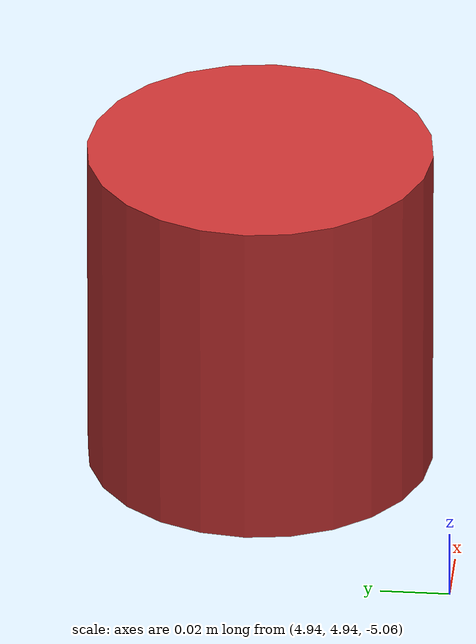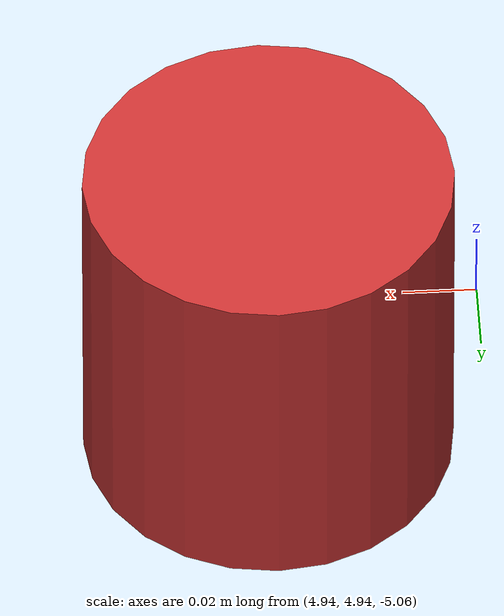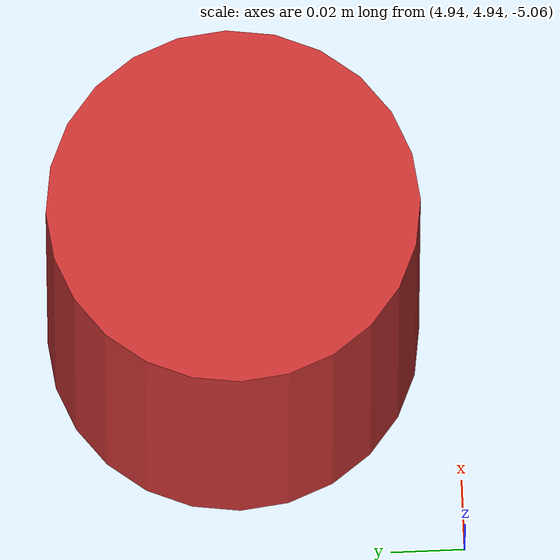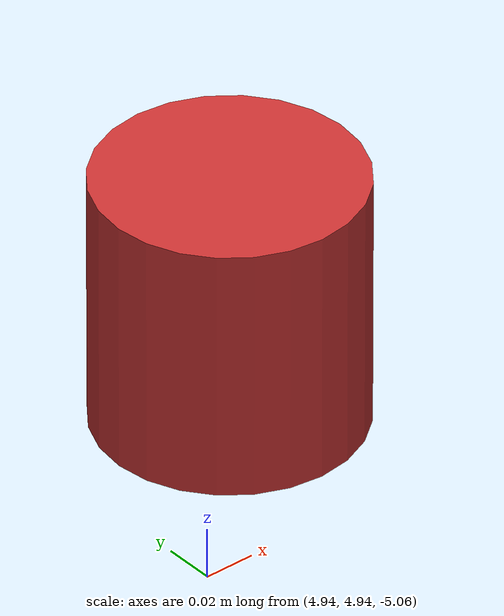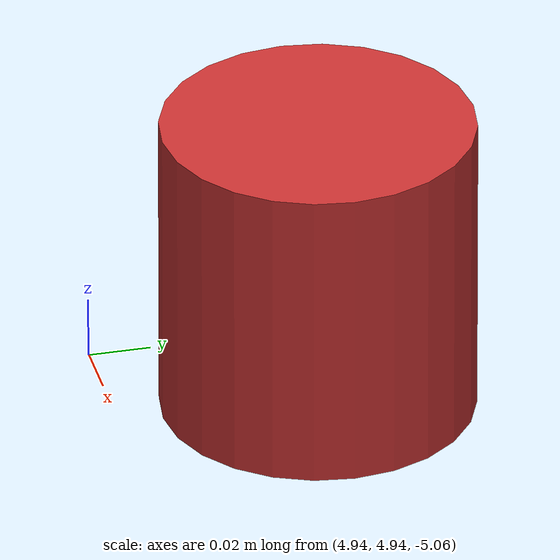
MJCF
<mujoco model="robot_arena">
    <compiler angle="degree" coordinate="local"/>
    <option integrator="RK4" timestep="0.002"/>

    <asset>
        <texture name="floor_tex" type="2d" builtin="checker" rgb1=".2 .3 .4" rgb2=".1 .15 .2" width="512" height="512" mark="cross" markrgb=".8 .8 .8"/>
        <material name="floor_mat" texture="floor_tex" texrepeat="5 5" texuniform="true"/>

    </asset>

    <option integrator="RK4" timestep="0.002" gravity="0 0 -9.81"/>
    <visual>
        <global offwidth="1920" offheight="1080"/>
    </visual>

    <worldbody>
        <light directional="true" diffuse=".8 .8 .8" specular=".2 .2 .2" pos="0 0 5" dir="0 0 -1"/>

        <geom name="floor" type="plane" size="1 1 .25" material="floor_mat" friction="2.0 0.005 0.0001"/>

        <camera name="overhead_cam" pos="0 0 1.8" xyaxes="1 0 0 0 1 0" fovy="60"/>

        <!-- Goal marker (position set at runtime from JSON) -->
        <body name="goal_marker" pos="0 0 -5">
            <geom name="goal_geom" type="cylinder" size="0.03 0.001" rgba="0.1 0.9 0.1 1" contype="0" conaffinity="0"/>
        </body>

        <!-- 30 static obstacle bodies (unused ones parked below floor). -->
        <body name="obstacle_0" pos="5 5 -5"><geom name="obstacle_geom_0" type="cylinder" size="0.05 0.05" rgba="0.8 0.2 0.2 1"/></body>
        <body name="obstacle_1" pos="5 5 -5"><geom name="obstacle_geom_1" type="cylinder" size="0.05 0.05" rgba="0.8 0.2 0.2 1"/></body>
        <body name="obstacle_2" pos="5 5 -5"><geom name="obstacle_geom_2" type="cylinder" size="0.05 0.05" rgba="0.8 0.2 0.2 1"/></body>
        <body name="obstacle_3" pos="5 5 -5"><geom name="obstacle_geom_3" type="cylinder" size="0.05 0.05" rgba="0.8 0.2 0.2 1"/></body>
        <body name="obstacle_4" pos="5 5 -5"><geom name="obstacle_geom_4" type="cylinder" size="0.05 0.05" rgba="0.8 0.2 0.2 1"/></body>
        <body name="obstacle_5" pos="5 5 -5"><geom name="obstacle_geom_5" type="cylinder" size="0.05 0.05" rgba="0.8 0.2 0.2 1"/></body>
        <body name="obstacle_6" pos="5 5 -5"><geom name="obstacle_geom_6" type="cylinder" size="0.05 0.05" rgba="0.8 0.2 0.2 1"/></body>
        <body name="obstacle_7" pos="5 5 -5"><geom name="obstacle_geom_7" type="cylinder" size="0.05 0.05" rgba="0.8 0.2 0.2 1"/></body>
        <body name="obstacle_8" pos="5 5 -5"><geom name="obstacle_geom_8" type="cylinder" size="0.05 0.05" rgba="0.8 0.2 0.2 1"/></body>
        <body name="obstacle_9" pos="5 5 -5"><geom name="obstacle_geom_9" type="cylinder" size="0.05 0.05" rgba="0.8 0.2 0.2 1"/></body>
        <body name="obstacle_10" pos="5 5 -5"><geom name="obstacle_geom_10" type="cylinder" size="0.05 0.05" rgba="0.8 0.2 0.2 1"/></body>
        <body name="obstacle_11" pos="5 5 -5"><geom name="obstacle_geom_11" type="cylinder" size="0.05 0.05" rgba="0.8 0.2 0.2 1"/></body>
        <body name="obstacle_12" pos="5 5 -5"><geom name="obstacle_geom_12" type="cylinder" size="0.05 0.05" rgba="0.8 0.2 0.2 1"/></body>
        <body name="obstacle_13" pos="5 5 -5"><geom name="obstacle_geom_13" type="cylinder" size="0.05 0.05" rgba="0.8 0.2 0.2 1"/></body>
        <body name="obstacle_14" pos="5 5 -5"><geom name="obstacle_geom_14" type="cylinder" size="0.05 0.05" rgba="0.8 0.2 0.2 1"/></body>
        <body name="obstacle_15" pos="5 5 -5"><geom name="obstacle_geom_15" type="cylinder" size="0.05 0.05" rgba="0.8 0.2 0.2 1"/></body>
        <body name="obstacle_16" pos="5 5 -5"><geom name="obstacle_geom_16" type="cylinder" size="0.05 0.05" rgba="0.8 0.2 0.2 1"/></body>
        <body name="obstacle_17" pos="5 5 -5"><geom name="obstacle_geom_17" type="cylinder" size="0.05 0.05" rgba="0.8 0.2 0.2 1"/></body>
        <body name="obstacle_18" pos="5 5 -5"><geom name="obstacle_geom_18" type="cylinder" size="0.05 0.05" rgba="0.8 0.2 0.2 1"/></body>
        <body name="obstacle_19" pos="5 5 -5"><geom name="obstacle_geom_19" type="cylinder" size="0.05 0.05" rgba="0.8 0.2 0.2 1"/></body>
        <body name="obstacle_20" pos="5 5 -5"><geom name="obstacle_geom_20" type="cylinder" size="0.05 0.05" rgba="0.8 0.2 0.2 1"/></body>
        <body name="obstacle_21" pos="5 5 -5"><geom name="obstacle_geom_21" type="cylinder" size="0.05 0.05" rgba="0.8 0.2 0.2 1"/></body>
        <body name="obstacle_22" pos="5 5 -5"><geom name="obstacle_geom_22" type="cylinder" size="0.05 0.05" rgba="0.8 0.2 0.2 1"/></body>
        <body name="obstacle_23" pos="5 5 -5"><geom name="obstacle_geom_23" type="cylinder" size="0.05 0.05" rgba="0.8 0.2 0.2 1"/></body>
        <body name="obstacle_24" pos="5 5 -5"><geom name="obstacle_geom_24" type="cylinder" size="0.05 0.05" rgba="0.8 0.2 0.2 1"/></body>
        <body name="obstacle_25" pos="5 5 -5"><geom name="obstacle_geom_25" type="cylinder" size="0.05 0.05" rgba="0.8 0.2 0.2 1"/></body>
        <body name="obstacle_26" pos="5 5 -5"><geom name="obstacle_geom_26" type="cylinder" size="0.05 0.05" rgba="0.8 0.2 0.2 1"/></body>
        <body name="obstacle_27" pos="5 5 -5"><geom name="obstacle_geom_27" type="cylinder" size="0.05 0.05" rgba="0.8 0.2 0.2 1"/></body>
        <body name="obstacle_28" pos="5 5 -5"><geom name="obstacle_geom_28" type="cylinder" size="0.05 0.05" rgba="0.8 0.2 0.2 1"/></body>
        <body name="obstacle_29" pos="5 5 -5"><geom name="obstacle_geom_29" type="cylinder" size="0.05 0.05" rgba="0.8 0.2 0.2 1"/></body>
    </worldbody>

    <include file="robot101.xml"/>

</mujoco>

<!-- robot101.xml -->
<mujocoinclude>
    <worldbody>
        <body name="robot1" pos="0 0 0">
            <freejoint name="root"/>

            <camera name="tpp_cam" pos="-0.15 0 0.15" xyaxes="0 -1 0  0.447 0 0.894" fovy="60"/>
            <geom name="chassis_geom" type="box" size="0.0475 0.0475 0.024" pos="0 0 0.031" rgba="0.1 0.5 0.8 1"/>
            <geom name="top_cylinder" type="cylinder" pos="0 0 0.055" size="0.03 0.02" rgba="0.5 0.2 0.2 1"/>

            <body name="left_wheel" pos="-0.02 0.0525 0.031">
                <joint name="left_wheel_joint" type="hinge" axis="0 1 0" damping="0.005"/>
                <geom name="left_wheel_geom" type="cylinder" size="0.031 0.005" rgba="0.2 0.2 0.2 1" zaxis="0 1 0" friction="2.0 0.005 0.0001"/>
            </body>

            <body name="right_wheel" pos="-0.02 -0.0525 0.031">
                <joint name="right_wheel_joint" type="hinge" axis="0 1 0" damping="0.005"/>
                <geom name="right_wheel_geom" type="cylinder" size="0.031 0.005" rgba="0.2 0.2 0.2 1" zaxis="0 1 0" friction="2.0 0.005 0.0001"/>
            </body>

            <body name="castor_wheel" pos="0.04 0 0.01">
                <joint name="castor_joint" type="ball"/>
                <geom name="castor_geom" type="sphere" size="0.01" rgba="0.5 0.5 0.5 1" friction="0.005 0.005 0.0001"/>
            </body>

            <!-- add a directional arrow to indicate the front of the robot -->
            <body name="direction_arrow" pos="0.02 0 0.08">
                <geom name="arrow_geom" type="cylinder" size="0.01 0.02" rgba="0.4 0.9 0.1 1" zaxis="1 0 0"/>
            </body>

            <!-- 30 LiDAR rangefinder sites, evenly spaced every 12 degrees -->
            <site name="lidar_site_0"  pos="0.050000 0.000000 0.07" zaxis="1.000000 0.000000 0" size="0.002"/>
            <site name="lidar_site_1"  pos="0.048907 0.010396 0.07" zaxis="0.978148 0.207912 0" size="0.002"/>
            <site name="lidar_site_2"  pos="0.045677 0.020337 0.07" zaxis="0.913545 0.406737 0" size="0.002"/>
            <site name="lidar_site_3"  pos="0.040451 0.029389 0.07" zaxis="0.809017 0.587785 0" size="0.002"/>
            <site name="lidar_site_4"  pos="0.033457 0.037157 0.07" zaxis="0.669131 0.743145 0" size="0.002"/>
            <site name="lidar_site_5"  pos="0.025000 0.043301 0.07" zaxis="0.500000 0.866025 0" size="0.002"/>
            <site name="lidar_site_6"  pos="0.015451 0.047553 0.07" zaxis="0.309017 0.951057 0" size="0.002"/>
            <site name="lidar_site_7"  pos="0.005226 0.049726 0.07" zaxis="0.104528 0.994522 0" size="0.002"/>
            <site name="lidar_site_8"  pos="-0.005226 0.049726 0.07" zaxis="-0.104528 0.994522 0" size="0.002"/>
            <site name="lidar_site_9"  pos="-0.015451 0.047553 0.07" zaxis="-0.309017 0.951057 0" size="0.002"/>
            <site name="lidar_site_10" pos="-0.025000 0.043301 0.07" zaxis="-0.500000 0.866025 0" size="0.002"/>
            <site name="lidar_site_11" pos="-0.033457 0.037157 0.07" zaxis="-0.669131 0.743145 0" size="0.002"/>
            <site name="lidar_site_12" pos="-0.040451 0.029389 0.07" zaxis="-0.809017 0.587785 0" size="0.002"/>
            <site name="lidar_site_13" pos="-0.045677 0.020337 0.07" zaxis="-0.913545 0.406737 0" size="0.002"/>
            <site name="lidar_site_14" pos="-0.048907 0.010396 0.07" zaxis="-0.978148 0.207912 0" size="0.002"/>
            <site name="lidar_site_15" pos="-0.050000 0.000000 0.07" zaxis="-1.000000 0.000000 0" size="0.002"/>
            <site name="lidar_site_16" pos="-0.048907 -0.010396 0.07" zaxis="-0.978148 -0.207912 0" size="0.002"/>
            <site name="lidar_site_17" pos="-0.045677 -0.020337 0.07" zaxis="-0.913545 -0.406737 0" size="0.002"/>
            <site name="lidar_site_18" pos="-0.040451 -0.029389 0.07" zaxis="-0.809017 -0.587785 0" size="0.002"/>
            <site name="lidar_site_19" pos="-0.033457 -0.037157 0.07" zaxis="-0.669131 -0.743145 0" size="0.002"/>
            <site name="lidar_site_20" pos="-0.025000 -0.043301 0.07" zaxis="-0.500000 -0.866025 0" size="0.002"/>
            <site name="lidar_site_21" pos="-0.015451 -0.047553 0.07" zaxis="-0.309017 -0.951057 0" size="0.002"/>
            <site name="lidar_site_22" pos="-0.005226 -0.049726 0.07" zaxis="-0.104528 -0.994522 0" size="0.002"/>
            <site name="lidar_site_23" pos="0.005226 -0.049726 0.07" zaxis="0.104528 -0.994522 0" size="0.002"/>
            <site name="lidar_site_24" pos="0.015451 -0.047553 0.07" zaxis="0.309017 -0.951057 0" size="0.002"/>
            <site name="lidar_site_25" pos="0.025000 -0.043301 0.07" zaxis="0.500000 -0.866025 0" size="0.002"/>
            <site name="lidar_site_26" pos="0.033457 -0.037157 0.07" zaxis="0.669131 -0.743145 0" size="0.002"/>
            <site name="lidar_site_27" pos="0.040451 -0.029389 0.07" zaxis="0.809017 -0.587785 0" size="0.002"/>
            <site name="lidar_site_28" pos="0.045677 -0.020337 0.07" zaxis="0.913545 -0.406737 0" size="0.002"/>
            <site name="lidar_site_29" pos="0.048907 -0.010396 0.07" zaxis="0.978148 -0.207912 0" size="0.002"/>
        </body>
    </worldbody>

    <actuator>
        <motor name="left_motor" joint="left_wheel_joint" gear="1"/>
        <motor name="right_motor" joint="right_wheel_joint" gear="1"/>
    </actuator>

    <sensor>
        <rangefinder name="lidar_0" site="lidar_site_0"/>
        <rangefinder name="lidar_1" site="lidar_site_1"/>
        <rangefinder name="lidar_2" site="lidar_site_2"/>
        <rangefinder name="lidar_3" site="lidar_site_3"/>
        <rangefinder name="lidar_4" site="lidar_site_4"/>
        <rangefinder name="lidar_5" site="lidar_site_5"/>
        <rangefinder name="lidar_6" site="lidar_site_6"/>
        <rangefinder name="lidar_7" site="lidar_site_7"/>
        <rangefinder name="lidar_8" site="lidar_site_8"/>
        <rangefinder name="lidar_9" site="lidar_site_9"/>
        <rangefinder name="lidar_10" site="lidar_site_10"/>
        <rangefinder name="lidar_11" site="lidar_site_11"/>
        <rangefinder name="lidar_12" site="lidar_site_12"/>
        <rangefinder name="lidar_13" site="lidar_site_13"/>
        <rangefinder name="lidar_14" site="lidar_site_14"/>
        <rangefinder name="lidar_15" site="lidar_site_15"/>
        <rangefinder name="lidar_16" site="lidar_site_16"/>
        <rangefinder name="lidar_17" site="lidar_site_17"/>
        <rangefinder name="lidar_18" site="lidar_site_18"/>
        <rangefinder name="lidar_19" site="lidar_site_19"/>
        <rangefinder name="lidar_20" site="lidar_site_20"/>
        <rangefinder name="lidar_21" site="lidar_site_21"/>
        <rangefinder name="lidar_22" site="lidar_site_22"/>
        <rangefinder name="lidar_23" site="lidar_site_23"/>
        <rangefinder name="lidar_24" site="lidar_site_24"/>
        <rangefinder name="lidar_25" site="lidar_site_25"/>
        <rangefinder name="lidar_26" site="lidar_site_26"/>
        <rangefinder name="lidar_27" site="lidar_site_27"/>
        <rangefinder name="lidar_28" site="lidar_site_28"/>
        <rangefinder name="lidar_29" site="lidar_site_29"/>
    </sensor>
</mujocoinclude>
